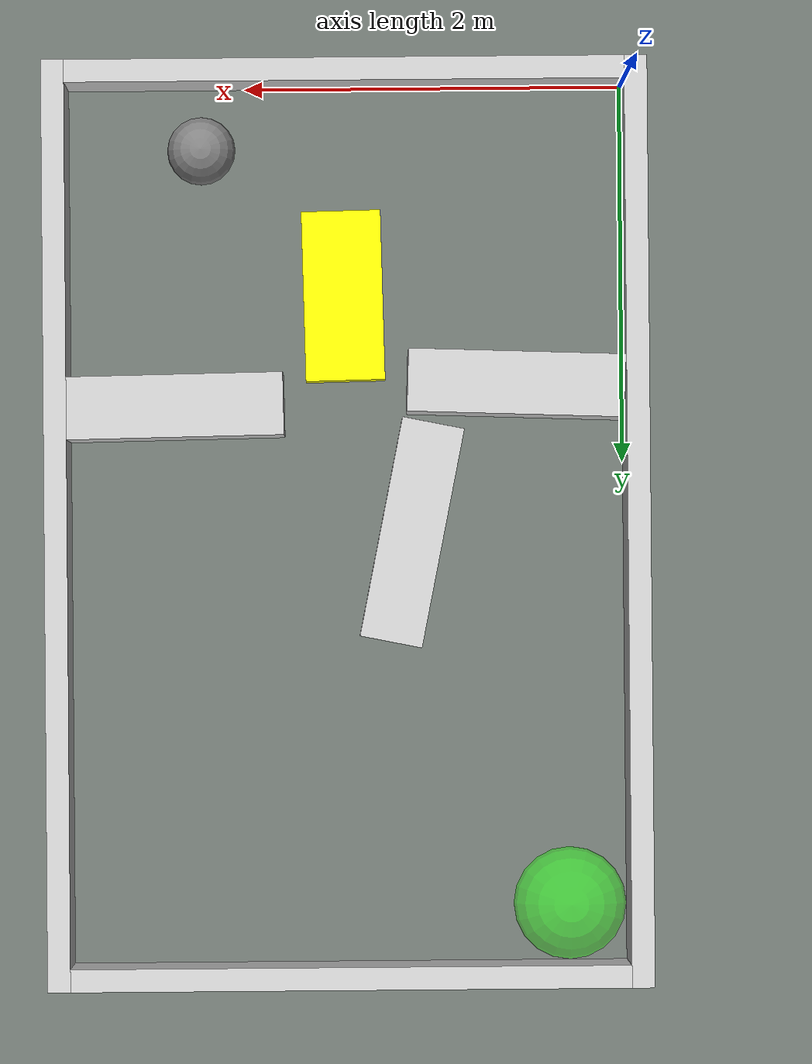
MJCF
<?xml version="1.0" ?>
<mujoco model="generated_environment">
  <option timestep="0.01" integrator="RK4" cone="elliptic"/>
  <default>
    <geom density="1"/>
  </default>
  <asset>
    <texture builtin="gradient" height="3072" rgb1="0.3 0.5 0.7" rgb2="0 0 0" type="skybox" width="512"/>
    <texture builtin="checker" height="300" mark="edge" markrgb="0.8 0.8 0.8" name="groundplane" rgb1="0.2 0.3 0.4" rgb2="0.1 0.2 0.3" type="2d" width="300"/>
    <material name="groundplane" reflectance="0.2" texrepeat="5 5" texture="groundplane" texuniform="true"/>
    <material name="robot" rgba="1.0 1.0 0.0 1.0"/>
  </asset>
  <worldbody>
    <light dir="0 0 -1" directional="true" pos="0 0 1.5"/>
    <geom condim="4" friction="0.5 0.005 0.001" material="groundplane" name="floor" size="0 0 0.05" type="plane"/>
    <body name="walls">
      <geom name="wall_1" condim="4" pos="-0.06 2.325 0.30000000000000004" friction="1 0.005 0.0001" rgba="0.800000011920929 0.800000011920929 0.800000011920929 1.0" size="0.06 2.4450000000000003 0.30000000000000004" type="box"/>
      <geom name="wall_2" condim="4" pos="3.0 2.325 0.30000000000000004" friction="1 0.005 0.0001" rgba="0.800000011920929 0.800000011920929 0.800000011920929 1.0" size="0.06 2.4450000000000003 0.30000000000000004" type="box"/>
      <geom name="wall_3" condim="4" pos="1.47 -0.06 0.30000000000000004" friction="1 0.005 0.0001" rgba="0.800000011920929 0.800000011920929 0.800000011920929 1.0" size="1.47 0.06 0.30000000000000004" type="box"/>
      <geom name="wall_4" condim="4" pos="1.47 4.71 0.30000000000000004" friction="1 0.005 0.0001" rgba="0.800000011920929 0.800000011920929 0.800000011920929 1.0" size="1.47 0.06 0.30000000000000004" type="box"/>
    </body>
    <body name="robot">
      <joint name="joint_x" type="slide" pos="0 0 0" axis="1 0 0"/>
      <joint name="joint_y" type="slide" pos="0 0 0" axis="0 1 0"/>
      <geom name="robot" type="sphere" pos="2.2297271200814466 0.3370726123348645 0.18" size="0.18 0.18 0.18" mass="5.0" friction="1.0 0.005 0.0001" condim="4"/>
    </body>
    <body name="wall_5">
      <geom name="wall_5" condim="4" pos="0.5775798372519395 1.5938504530989843 0.30000000000000004" quat="-0.9998457682423347 0 0 0.017562452217599087" friction="1 0.005 0.0001" rgba="0.800000011920929 0.800000011920929 0.800000011920929 1.0" size="0.5700000000000001 0.165 0.30000000000000004" type="box"/>
    </body>
    <body name="obstacle_1_movable">
      <geom name="obstacle_1_movable" condim="4" pos="1.483170961264387 1.113052478132257 0.12" quat="-0.0106495281497728 0 0 0.9999432921672045" friction="1 0.005 0.0001" rgba="1 1 0 1" size="0.21000000000000002 0.44999999999999996 0.12" type="box" mass="0.1"/>
      <joint type="free"/>
    </body>
    <body name="wall_6">
      <geom name="wall_6" condim="4" pos="1.130533129382365 2.374847997844147 0.30000000000000004" quat="0.09972342672326642 0 0 0.9950151949405442" friction="1 0.005 0.0001" rgba="0.800000011920929 0.800000011920929 0.800000011920929 1.0" size="0.165 0.585 0.30000000000000004" type="box"/>
    </body>
    <body name="wall_7">
      <geom name="wall_7" condim="4" pos="2.386249060920397 1.7014579218728985 0.30000000000000004" quat="0.7012632459373507 0 0 0.7129024196181486" friction="1 0.005 0.0001" rgba="0.800000011920929 0.800000011920929 0.800000011920929 1.0" size="0.165 0.585 0.30000000000000004" type="box"/>
    </body>
    <site name="goal" type="sphere" size="0.30000000000000004 0.30000000000000004 0.30000000000000004" rgba="0 1 0 0.5" pos="0.30000000000000004 4.35 0.0"/>
  </worldbody>
  <actuator>
    <velocity name="actuator_x" joint="joint_x" kv="50" ctrlrange="-0.5 0.5" forcerange="-20 20"/>
    <velocity name="actuator_y" joint="joint_y" kv="50" ctrlrange="-0.5 0.5" forcerange="-20 20"/>
  </actuator>
</mujoco>
